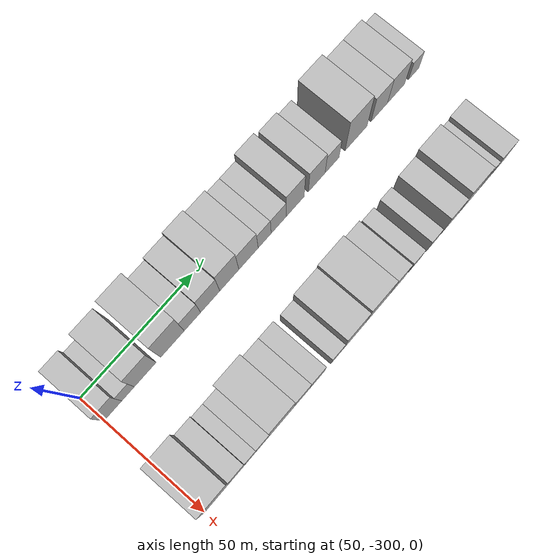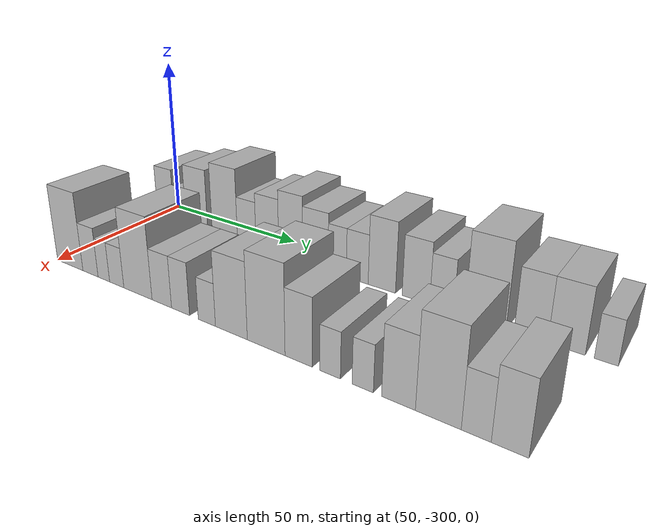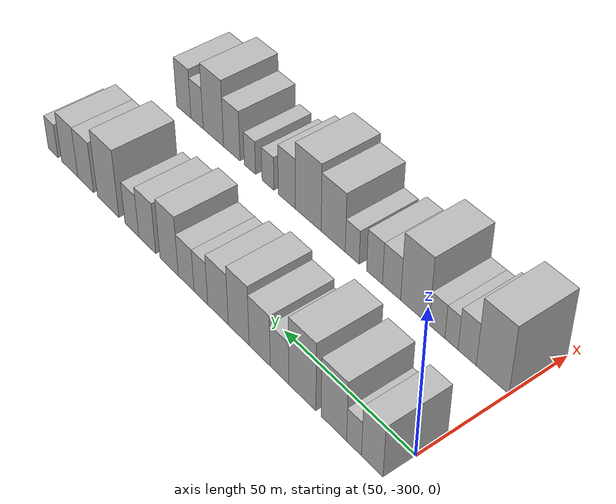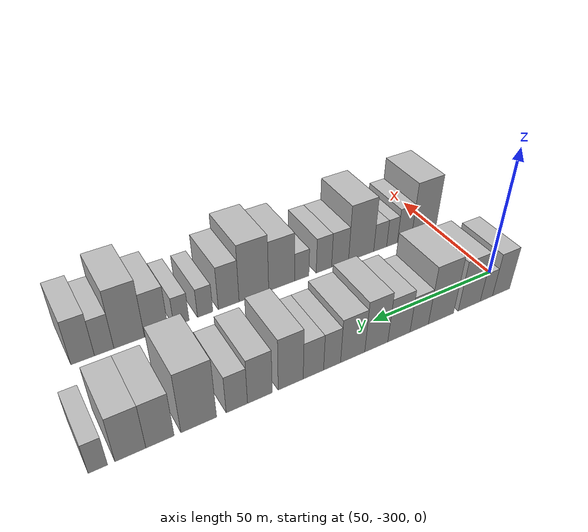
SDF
<sdf version="1.6">
 <world name="default">
  <model name="building_1">
   <static>1</static>
   <pose>50.0000 -296.1191 0 0.000000 0.000000 0.000000</pose>
   <link name="link">
    <pose>0 0 9.00 0 0 0</pose>
    <collision name="collision"><geometry><box><size>20.0000 7.7617 18.0000</size></box></geometry></collision>
    <visual name="visual">
     <cast_shadows>0</cast_shadows>
     <geometry><box><size>20.0000 7.7617 18.0000</size></box></geometry>
     <material>
      <script>
       <uri>model://HANNAS_wall/materials/scripts</uri>
       <uri>model://HANNAS_wall/materials/textures</uri>
       <name>vrc/HANNAS_wall</name>
      </script>
     </material>
    </visual>
   </link>
  </model>
  <model name="building_2">
   <static>1</static>
   <pose>50.0000 -289.5064 0 0.000000 0.000000 0.000000</pose>
   <link name="link">
    <pose>0 0 6.00 0 0 0</pose>
    <collision name="collision"><geometry><box><size>20.0000 5.4638 12.0000</size></box></geometry></collision>
    <visual name="visual">
     <cast_shadows>0</cast_shadows>
     <geometry><box><size>20.0000 5.4638 12.0000</size></box></geometry>
     <material>
      <script>
       <uri>model://HANNAS_wall/materials/scripts</uri>
       <uri>model://HANNAS_wall/materials/textures</uri>
       <name>vrc/HANNAS_wall</name>
      </script>
     </material>
    </visual>
   </link>
  </model>
  <model name="building_3">
   <static>1</static>
   <pose>50.0000 -281.9822 0 0.000000 0.000000 0.000000</pose>
   <link name="link">
    <pose>0 0 10.50 0 0 0</pose>
    <collision name="collision"><geometry><box><size>20.0000 9.5846 21.0000</size></box></geometry></collision>
    <visual name="visual">
     <cast_shadows>0</cast_shadows>
     <geometry><box><size>20.0000 9.5846 21.0000</size></box></geometry>
     <material>
      <script>
       <uri>model://HANNAS_wall/materials/scripts</uri>
       <uri>model://HANNAS_wall/materials/textures</uri>
       <name>vrc/HANNAS_wall</name>
      </script>
     </material>
    </visual>
   </link>
  </model>
  <model name="building_4">
   <static>1</static>
   <pose>50.0000 -269.9203 0 0.000000 0.000000 0.000000</pose>
   <link name="link">
    <pose>0 0 12.00 0 0 0</pose>
    <collision name="collision"><geometry><box><size>20.0000 10.5393 24.0000</size></box></geometry></collision>
    <visual name="visual">
     <cast_shadows>0</cast_shadows>
     <geometry><box><size>20.0000 10.5393 24.0000</size></box></geometry>
     <material>
      <script>
       <uri>model://HANNAS_wall/materials/scripts</uri>
       <uri>model://HANNAS_wall/materials/textures</uri>
       <name>vrc/HANNAS_wall</name>
      </script>
     </material>
    </visual>
   </link>
  </model>
  <model name="building_5">
   <static>1</static>
   <pose>50.0000 -260.9323 0 0.000000 0.000000 0.000000</pose>
   <link name="link">
    <pose>0 0 7.50 0 0 0</pose>
    <collision name="collision"><geometry><box><size>20.0000 7.4368 15.0000</size></box></geometry></collision>
    <visual name="visual">
     <cast_shadows>0</cast_shadows>
     <geometry><box><size>20.0000 7.4368 15.0000</size></box></geometry>
     <material>
      <script>
       <uri>model://HANNAS_wall/materials/scripts</uri>
       <uri>model://HANNAS_wall/materials/textures</uri>
       <name>vrc/HANNAS_wall</name>
      </script>
     </material>
    </visual>
   </link>
  </model>
  <model name="building_6">
   <static>1</static>
   <pose>50.0000 -252.8447 0 0.000000 0.000000 0.000000</pose>
   <link name="link">
    <pose>0 0 9.00 0 0 0</pose>
    <collision name="collision"><geometry><box><size>20.0000 8.7385 18.0000</size></box></geometry></collision>
    <visual name="visual">
     <cast_shadows>0</cast_shadows>
     <geometry><box><size>20.0000 8.7385 18.0000</size></box></geometry>
     <material>
      <script>
       <uri>model://HANNAS_wall/materials/scripts</uri>
       <uri>model://HANNAS_wall/materials/textures</uri>
       <name>vrc/HANNAS_wall</name>
      </script>
     </material>
    </visual>
   </link>
  </model>
  <model name="building_7">
   <static>1</static>
   <pose>50.0000 -244.0707 0 0.000000 0.000000 0.000000</pose>
   <link name="link">
    <pose>0 0 10.50 0 0 0</pose>
    <collision name="collision"><geometry><box><size>20.0000 8.8095 21.0000</size></box></geometry></collision>
    <visual name="visual">
     <cast_shadows>0</cast_shadows>
     <geometry><box><size>20.0000 8.8095 21.0000</size></box></geometry>
     <material>
      <script>
       <uri>model://HANNAS_wall/materials/scripts</uri>
       <uri>model://HANNAS_wall/materials/textures</uri>
       <name>vrc/HANNAS_wall</name>
      </script>
     </material>
    </visual>
   </link>
  </model>
  <model name="building_8">
   <static>1</static>
   <pose>50.0000 -235.1789 0 0.000000 0.000000 0.000000</pose>
   <link name="link">
    <pose>0 0 9.00 0 0 0</pose>
    <collision name="collision"><geometry><box><size>20.0000 8.9741 18.0000</size></box></geometry></collision>
    <visual name="visual">
     <cast_shadows>0</cast_shadows>
     <geometry><box><size>20.0000 8.9741 18.0000</size></box></geometry>
     <material>
      <script>
       <uri>model://HANNAS_wall/materials/scripts</uri>
       <uri>model://HANNAS_wall/materials/textures</uri>
       <name>vrc/HANNAS_wall</name>
      </script>
     </material>
    </visual>
   </link>
  </model>
  <model name="building_9">
   <static>1</static>
   <pose>50.0000 -227.6335 0 0.000000 0.000000 0.000000</pose>
   <link name="link">
    <pose>0 0 7.50 0 0 0</pose>
    <collision name="collision"><geometry><box><size>20.0000 6.1166 15.0000</size></box></geometry></collision>
    <visual name="visual">
     <cast_shadows>0</cast_shadows>
     <geometry><box><size>20.0000 6.1166 15.0000</size></box></geometry>
     <material>
      <script>
       <uri>model://HANNAS_wall/materials/scripts</uri>
       <uri>model://HANNAS_wall/materials/textures</uri>
       <name>vrc/HANNAS_wall</name>
      </script>
     </material>
    </visual>
   </link>
  </model>
  <model name="building_10">
   <static>1</static>
   <pose>50.0000 -220.9918 0 0.000000 0.000000 0.000000</pose>
   <link name="link">
    <pose>0 0 7.50 0 0 0</pose>
    <collision name="collision"><geometry><box><size>20.0000 7.1667 15.0000</size></box></geometry></collision>
    <visual name="visual">
     <cast_shadows>0</cast_shadows>
     <geometry><box><size>20.0000 7.1667 15.0000</size></box></geometry>
     <material>
      <script>
       <uri>model://HANNAS_wall/materials/scripts</uri>
       <uri>model://HANNAS_wall/materials/textures</uri>
       <name>vrc/HANNAS_wall</name>
      </script>
     </material>
    </visual>
   </link>
  </model>
  <model name="building_11">
   <static>1</static>
   <pose>50.0000 -213.1312 0 0.000000 0.000000 0.000000</pose>
   <link name="link">
    <pose>0 0 10.50 0 0 0</pose>
    <collision name="collision"><geometry><box><size>20.0000 8.5546 21.0000</size></box></geometry></collision>
    <visual name="visual">
     <cast_shadows>0</cast_shadows>
     <geometry><box><size>20.0000 8.5546 21.0000</size></box></geometry>
     <material>
      <script>
       <uri>model://HANNAS_wall/materials/scripts</uri>
       <uri>model://HANNAS_wall/materials/textures</uri>
       <name>vrc/HANNAS_wall</name>
      </script>
     </material>
    </visual>
   </link>
  </model>
  <model name="building_12">
   <static>1</static>
   <pose>50.0000 -202.7954 0 0.000000 0.000000 0.000000</pose>
   <link name="link">
    <pose>0 0 9.00 0 0 0</pose>
    <collision name="collision"><geometry><box><size>20.0000 8.1169 18.0000</size></box></geometry></collision>
    <visual name="visual">
     <cast_shadows>0</cast_shadows>
     <geometry><box><size>20.0000 8.1169 18.0000</size></box></geometry>
     <material>
      <script>
       <uri>model://HANNAS_wall/materials/scripts</uri>
       <uri>model://HANNAS_wall/materials/textures</uri>
       <name>vrc/HANNAS_wall</name>
      </script>
     </material>
    </visual>
   </link>
  </model>
  <model name="building_13">
   <static>1</static>
   <pose>50.0000 -195.3282 0 0.000000 0.000000 0.000000</pose>
   <link name="link">
    <pose>0 0 7.50 0 0 0</pose>
    <collision name="collision"><geometry><box><size>20.0000 6.8176 15.0000</size></box></geometry></collision>
    <visual name="visual">
     <cast_shadows>0</cast_shadows>
     <geometry><box><size>20.0000 6.8176 15.0000</size></box></geometry>
     <material>
      <script>
       <uri>model://HANNAS_wall/materials/scripts</uri>
       <uri>model://HANNAS_wall/materials/textures</uri>
       <name>vrc/HANNAS_wall</name>
      </script>
     </material>
    </visual>
   </link>
  </model>
  <model name="building_14">
   <static>1</static>
   <pose>50.0000 -183.4700 0 0.000000 0.000000 0.000000</pose>
   <link name="link">
    <pose>0 0 12.00 0 0 0</pose>
    <collision name="collision"><geometry><box><size>20.0000 10.8988 24.0000</size></box></geometry></collision>
    <visual name="visual">
     <cast_shadows>0</cast_shadows>
     <geometry><box><size>20.0000 10.8988 24.0000</size></box></geometry>
     <material>
      <script>
       <uri>model://HANNAS_wall/materials/scripts</uri>
       <uri>model://HANNAS_wall/materials/textures</uri>
       <name>vrc/HANNAS_wall</name>
      </script>
     </material>
    </visual>
   </link>
  </model>
  <model name="building_15">
   <static>1</static>
   <pose>50.0000 -171.8970 0 0.000000 0.000000 0.000000</pose>
   <link name="link">
    <pose>0 0 9.00 0 0 0</pose>
    <collision name="collision"><geometry><box><size>20.0000 8.2473 18.0000</size></box></geometry></collision>
    <visual name="visual">
     <cast_shadows>0</cast_shadows>
     <geometry><box><size>20.0000 8.2473 18.0000</size></box></geometry>
     <material>
      <script>
       <uri>model://HANNAS_wall/materials/scripts</uri>
       <uri>model://HANNAS_wall/materials/textures</uri>
       <name>vrc/HANNAS_wall</name>
      </script>
     </material>
    </visual>
   </link>
  </model>
  <model name="building_16">
   <static>1</static>
   <pose>50.0000 -163.4078 0 0.000000 0.000000 0.000000</pose>
   <link name="link">
    <pose>0 0 9.00 0 0 0</pose>
    <collision name="collision"><geometry><box><size>20.0000 8.7312 18.0000</size></box></geometry></collision>
    <visual name="visual">
     <cast_shadows>0</cast_shadows>
     <geometry><box><size>20.0000 8.7312 18.0000</size></box></geometry>
     <material>
      <script>
       <uri>model://HANNAS_wall/materials/scripts</uri>
       <uri>model://HANNAS_wall/materials/textures</uri>
       <name>vrc/HANNAS_wall</name>
      </script>
     </material>
    </visual>
   </link>
  </model>
  <model name="building_17">
   <static>1</static>
   <pose>50.0000 -154.3923 0 0.000000 0.000000 0.000000</pose>
   <link name="link">
    <pose>0 0 6.00 0 0 0</pose>
    <collision name="collision"><geometry><box><size>20.0000 5.2997 12.0000</size></box></geometry></collision>
    <visual name="visual">
     <cast_shadows>0</cast_shadows>
     <geometry><box><size>20.0000 5.2997 12.0000</size></box></geometry>
     <material>
      <script>
       <uri>model://HANNAS_wall/materials/scripts</uri>
       <uri>model://HANNAS_wall/materials/textures</uri>
       <name>vrc/HANNAS_wall</name>
      </script>
     </material>
    </visual>
   </link>
  </model>
  <model name="building_70">
   <static>1</static>
   <pose>90.0000 -294.2037 0 0.000000 0.000000 0.000000</pose>
   <link name="link">
    <pose>0 0 12.00 0 0 0</pose>
    <collision name="collision"><geometry><box><size>20.0000 11.5926 24.0000</size></box></geometry></collision>
    <visual name="visual">
     <cast_shadows>0</cast_shadows>
     <geometry><box><size>20.0000 11.5926 24.0000</size></box></geometry>
     <material>
      <script>
       <uri>model://HANNAS_wall/materials/scripts</uri>
       <uri>model://HANNAS_wall/materials/textures</uri>
       <name>vrc/HANNAS_wall</name>
      </script>
     </material>
    </visual>
   </link>
  </model>
  <model name="building_71">
   <static>1</static>
   <pose>90.0000 -285.1056 0 0.000000 0.000000 0.000000</pose>
   <link name="link">
    <pose>0 0 7.50 0 0 0</pose>
    <collision name="collision"><geometry><box><size>20.0000 6.6035 15.0000</size></box></geometry></collision>
    <visual name="visual">
     <cast_shadows>0</cast_shadows>
     <geometry><box><size>20.0000 6.6035 15.0000</size></box></geometry>
     <material>
      <script>
       <uri>model://HANNAS_wall/materials/scripts</uri>
       <uri>model://HANNAS_wall/materials/textures</uri>
       <name>vrc/HANNAS_wall</name>
      </script>
     </material>
    </visual>
   </link>
  </model>
  <model name="building_72">
   <static>1</static>
   <pose>90.0000 -279.3590 0 0.000000 0.000000 0.000000</pose>
   <link name="link">
    <pose>0 0 6.00 0 0 0</pose>
    <collision name="collision"><geometry><box><size>20.0000 4.8897 12.0000</size></box></geometry></collision>
    <visual name="visual">
     <cast_shadows>0</cast_shadows>
     <geometry><box><size>20.0000 4.8897 12.0000</size></box></geometry>
     <material>
      <script>
       <uri>model://HANNAS_wall/materials/scripts</uri>
       <uri>model://HANNAS_wall/materials/textures</uri>
       <name>vrc/HANNAS_wall</name>
      </script>
     </material>
    </visual>
   </link>
  </model>
  <model name="building_73">
   <static>1</static>
   <pose>90.0000 -273.9968 0 0.000000 0.000000 0.000000</pose>
   <link name="link">
    <pose>0 0 6.00 0 0 0</pose>
    <collision name="collision"><geometry><box><size>20.0000 5.8347 12.0000</size></box></geometry></collision>
    <visual name="visual">
     <cast_shadows>0</cast_shadows>
     <geometry><box><size>20.0000 5.8347 12.0000</size></box></geometry>
     <material>
      <script>
       <uri>model://HANNAS_wall/materials/scripts</uri>
       <uri>model://HANNAS_wall/materials/textures</uri>
       <name>vrc/HANNAS_wall</name>
      </script>
     </material>
    </visual>
   </link>
  </model>
  <model name="building_74">
   <static>1</static>
   <pose>90.0000 -265.5483 0 0.000000 0.000000 0.000000</pose>
   <link name="link">
    <pose>0 0 12.00 0 0 0</pose>
    <collision name="collision"><geometry><box><size>20.0000 11.0624 24.0000</size></box></geometry></collision>
    <visual name="visual">
     <cast_shadows>0</cast_shadows>
     <geometry><box><size>20.0000 11.0624 24.0000</size></box></geometry>
     <material>
      <script>
       <uri>model://HANNAS_wall/materials/scripts</uri>
       <uri>model://HANNAS_wall/materials/textures</uri>
       <name>vrc/HANNAS_wall</name>
      </script>
     </material>
    </visual>
   </link>
  </model>
  <model name="building_75">
   <static>1</static>
   <pose>90.0000 -256.3970 0 0.000000 0.000000 0.000000</pose>
   <link name="link">
    <pose>0 0 7.50 0 0 0</pose>
    <collision name="collision"><geometry><box><size>20.0000 7.2402 15.0000</size></box></geometry></collision>
    <visual name="visual">
     <cast_shadows>0</cast_shadows>
     <geometry><box><size>20.0000 7.2402 15.0000</size></box></geometry>
     <material>
      <script>
       <uri>model://HANNAS_wall/materials/scripts</uri>
       <uri>model://HANNAS_wall/materials/textures</uri>
       <name>vrc/HANNAS_wall</name>
      </script>
     </material>
    </visual>
   </link>
  </model>
  <model name="building_76">
   <static>1</static>
   <pose>90.0000 -249.5553 0 0.000000 0.000000 0.000000</pose>
   <link name="link">
    <pose>0 0 7.50 0 0 0</pose>
    <collision name="collision"><geometry><box><size>20.0000 6.4432 15.0000</size></box></geometry></collision>
    <visual name="visual">
     <cast_shadows>0</cast_shadows>
     <geometry><box><size>20.0000 6.4432 15.0000</size></box></geometry>
     <material>
      <script>
       <uri>model://HANNAS_wall/materials/scripts</uri>
       <uri>model://HANNAS_wall/materials/textures</uri>
       <name>vrc/HANNAS_wall</name>
      </script>
     </material>
    </visual>
   </link>
  </model>
  <model name="building_77">
   <static>1</static>
   <pose>90.0000 -240.4189 0 0.000000 0.000000 0.000000</pose>
   <link name="link">
    <pose>0 0 6.00 0 0 0</pose>
    <collision name="collision"><geometry><box><size>20.0000 5.8294 12.0000</size></box></geometry></collision>
    <visual name="visual">
     <cast_shadows>0</cast_shadows>
     <geometry><box><size>20.0000 5.8294 12.0000</size></box></geometry>
     <material>
      <script>
       <uri>model://HANNAS_wall/materials/scripts</uri>
       <uri>model://HANNAS_wall/materials/textures</uri>
       <name>vrc/HANNAS_wall</name>
      </script>
     </material>
    </visual>
   </link>
  </model>
  <model name="building_78">
   <static>1</static>
   <pose>90.0000 -232.3785 0 0.000000 0.000000 0.000000</pose>
   <link name="link">
    <pose>0 0 10.50 0 0 0</pose>
    <collision name="collision"><geometry><box><size>20.0000 10.2515 21.0000</size></box></geometry></collision>
    <visual name="visual">
     <cast_shadows>0</cast_shadows>
     <geometry><box><size>20.0000 10.2515 21.0000</size></box></geometry>
     <material>
      <script>
       <uri>model://HANNAS_wall/materials/scripts</uri>
       <uri>model://HANNAS_wall/materials/textures</uri>
       <name>vrc/HANNAS_wall</name>
      </script>
     </material>
    </visual>
   </link>
  </model>
  <model name="building_79">
   <static>1</static>
   <pose>90.0000 -221.5871 0 0.000000 0.000000 0.000000</pose>
   <link name="link">
    <pose>0 0 12.00 0 0 0</pose>
    <collision name="collision"><geometry><box><size>20.0000 11.3312 24.0000</size></box></geometry></collision>
    <visual name="visual">
     <cast_shadows>0</cast_shadows>
     <geometry><box><size>20.0000 11.3312 24.0000</size></box></geometry>
     <material>
      <script>
       <uri>model://HANNAS_wall/materials/scripts</uri>
       <uri>model://HANNAS_wall/materials/textures</uri>
       <name>vrc/HANNAS_wall</name>
      </script>
     </material>
    </visual>
   </link>
  </model>
  <model name="building_80">
   <static>1</static>
   <pose>90.0000 -212.0678 0 0.000000 0.000000 0.000000</pose>
   <link name="link">
    <pose>0 0 9.00 0 0 0</pose>
    <collision name="collision"><geometry><box><size>20.0000 7.7074 18.0000</size></box></geometry></collision>
    <visual name="visual">
     <cast_shadows>0</cast_shadows>
     <geometry><box><size>20.0000 7.7074 18.0000</size></box></geometry>
     <material>
      <script>
       <uri>model://HANNAS_wall/materials/scripts</uri>
       <uri>model://HANNAS_wall/materials/textures</uri>
       <name>vrc/HANNAS_wall</name>
      </script>
     </material>
    </visual>
   </link>
  </model>
  <model name="building_81">
   <static>1</static>
   <pose>90.0000 -203.4498 0 0.000000 0.000000 0.000000</pose>
   <link name="link">
    <pose>0 0 6.00 0 0 0</pose>
    <collision name="collision"><geometry><box><size>20.0000 5.5286 12.0000</size></box></geometry></collision>
    <visual name="visual">
     <cast_shadows>0</cast_shadows>
     <geometry><box><size>20.0000 5.5286 12.0000</size></box></geometry>
     <material>
      <script>
       <uri>model://HANNAS_wall/materials/scripts</uri>
       <uri>model://HANNAS_wall/materials/textures</uri>
       <name>vrc/HANNAS_wall</name>
      </script>
     </material>
    </visual>
   </link>
  </model>
  <model name="building_82">
   <static>1</static>
   <pose>90.0000 -195.0037 0 0.000000 0.000000 0.000000</pose>
   <link name="link">
    <pose>0 0 6.00 0 0 0</pose>
    <collision name="collision"><geometry><box><size>20.0000 5.3634 12.0000</size></box></geometry></collision>
    <visual name="visual">
     <cast_shadows>0</cast_shadows>
     <geometry><box><size>20.0000 5.3634 12.0000</size></box></geometry>
     <material>
      <script>
       <uri>model://HANNAS_wall/materials/scripts</uri>
       <uri>model://HANNAS_wall/materials/textures</uri>
       <name>vrc/HANNAS_wall</name>
      </script>
     </material>
    </visual>
   </link>
  </model>
  <model name="building_83">
   <static>1</static>
   <pose>90.0000 -186.3278 0 0.000000 0.000000 0.000000</pose>
   <link name="link">
    <pose>0 0 9.00 0 0 0</pose>
    <collision name="collision"><geometry><box><size>20.0000 7.9885 18.0000</size></box></geometry></collision>
    <visual name="visual">
     <cast_shadows>0</cast_shadows>
     <geometry><box><size>20.0000 7.9885 18.0000</size></box></geometry>
     <material>
      <script>
       <uri>model://HANNAS_wall/materials/scripts</uri>
       <uri>model://HANNAS_wall/materials/textures</uri>
       <name>vrc/HANNAS_wall</name>
      </script>
     </material>
    </visual>
   </link>
  </model>
  <model name="building_84">
   <static>1</static>
   <pose>90.0000 -177.2716 0 0.000000 0.000000 0.000000</pose>
   <link name="link">
    <pose>0 0 12.00 0 0 0</pose>
    <collision name="collision"><geometry><box><size>20.0000 10.1237 24.0000</size></box></geometry></collision>
    <visual name="visual">
     <cast_shadows>0</cast_shadows>
     <geometry><box><size>20.0000 10.1237 24.0000</size></box></geometry>
     <material>
      <script>
       <uri>model://HANNAS_wall/materials/scripts</uri>
       <uri>model://HANNAS_wall/materials/textures</uri>
       <name>vrc/HANNAS_wall</name>
      </script>
     </material>
    </visual>
   </link>
  </model>
  <model name="building_85">
   <static>1</static>
   <pose>90.0000 -169.0961 0 0.000000 0.000000 0.000000</pose>
   <link name="link">
    <pose>0 0 7.50 0 0 0</pose>
    <collision name="collision"><geometry><box><size>20.0000 6.2273 15.0000</size></box></geometry></collision>
    <visual name="visual">
     <cast_shadows>0</cast_shadows>
     <geometry><box><size>20.0000 6.2273 15.0000</size></box></geometry>
     <material>
      <script>
       <uri>model://HANNAS_wall/materials/scripts</uri>
       <uri>model://HANNAS_wall/materials/textures</uri>
       <name>vrc/HANNAS_wall</name>
      </script>
     </material>
    </visual>
   </link>
  </model>
  <model name="building_86">
   <static>1</static>
   <pose>90.0000 -162.2699 0 0.000000 0.000000 0.000000</pose>
   <link name="link">
    <pose>0 0 9.00 0 0 0</pose>
    <collision name="collision"><geometry><box><size>20.0000 7.4253 18.0000</size></box></geometry></collision>
    <visual name="visual">
     <cast_shadows>0</cast_shadows>
     <geometry><box><size>20.0000 7.4253 18.0000</size></box></geometry>
     <material>
      <script>
       <uri>model://HANNAS_wall/materials/scripts</uri>
       <uri>model://HANNAS_wall/materials/textures</uri>
       <name>vrc/HANNAS_wall</name>
      </script>
     </material>
    </visual>
   </link>
  </model>
 </world>
</sdf>
